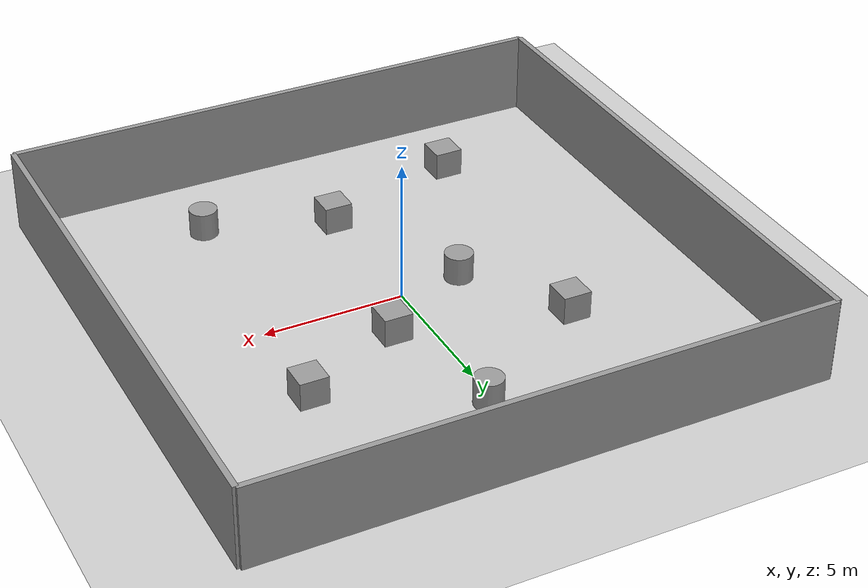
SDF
<sdf version="1.6">
 <world name="default">
  <light name="sun" type="directional">
   <pose>0 0 10 0 -0 0</pose>
   <diffuse>0.8 0.8 0.8 1</diffuse>
   <specular>0.1 0.1 0.1 1</specular>
   <attenuation>
    <range>1000</range>
    <constant>0.9</constant>
    <linear>0.01</linear>
    <quadratic>0.001</quadratic>
   </attenuation>
   <direction>-0.5 0.5 -1</direction>
  </light>
  <model name="ground_plane">
   <static>1</static>
   <link name="link">
    <collision name="collision">
     <geometry><plane><normal>0 0 1</normal><size>100 100</size></plane></geometry>
     <surface><friction><ode><mu>100</mu><mu2>50</mu2></ode></friction></surface>
    </collision>
    <visual name="visual">
     <cast_shadows>0</cast_shadows>
     <geometry><plane><normal>0 0 1</normal><size>100 100</size></plane></geometry>
     <material>
      <script><uri>file://media/materials/scripts/gazebo.material</uri><name>Gazebo/Grey</name></script>
     </material>
    </visual>
   </link>
  </model>
  <gravity>0 0 -9.8</gravity>
  <magnetic_field>6e-06 2.3e-05 -4.2e-05</magnetic_field>
  <atmosphere type="adiabatic"/>
  <physics name="default_physics" default="0" type="ode">
   <max_step_size>0.001</max_step_size>
   <real_time_factor>1</real_time_factor>
   <real_time_update_rate>1000</real_time_update_rate>
  </physics>
  <scene><ambient>0.4 0.4 0.4 1</ambient><background>0.7 0.7 0.7 1</background><shadows>1</shadows></scene>
  <spherical_coordinates>
   <surface_model>EARTH_WGS84</surface_model>
   <latitude_deg>0</latitude_deg>
   <longitude_deg>0</longitude_deg>
   <elevation>0</elevation>
   <heading_deg>0</heading_deg>
  </spherical_coordinates>
  <model name="grey_wall_20m">
   <link name="link">
    <pose>0 0 1.4 0 -0 0</pose>
    <inertial>
     <mass>500</mass>
     <inertia><ixx>1</ixx><ixy>0</ixy><ixz>0</ixz><iyy>1</iyy><iyz>0</iyz><izz>1</izz></inertia>
    </inertial>
    <visual name="visual">
     <cast_shadows>0</cast_shadows>
     <geometry><box><size>20 0.2 3</size></box></geometry>
     <material>
      <script>
       <uri>model://grey_wall/materials/scripts</uri>
       <uri>model://grey_wall/materials/textures</uri>
       <name>vrc/grey_wall</name>
      </script>
      <ambient>1 1 1 1</ambient>
      <diffuse>1 1 1 1</diffuse>
      <specular>0 0 0 1</specular>
      <emissive>0 0 0 1</emissive>
      <shader type="vertex"><normal_map>__default__</normal_map></shader>
     </material>
    </visual>
    <collision name="collision">
     <geometry><box><size>20 0.2 3</size></box></geometry>
     <surface>
      <friction>
       <ode><mu>1</mu><mu2>1</mu2><fdir1>0 0 0</fdir1><slip1>0</slip1><slip2>0</slip2></ode>
       <torsional>
        <coefficient>1</coefficient>
        <patch_radius>0</patch_radius>
        <surface_radius>0</surface_radius>
        <use_patch_radius>1</use_patch_radius>
        <ode><slip>0</slip></ode>
       </torsional>
      </friction>
      <bounce><restitution_coefficient>0</restitution_coefficient><threshold>1e+06</threshold></bounce>
      <contact>
       <collide_without_contact>0</collide_without_contact>
       <collide_without_contact_bitmask>1</collide_without_contact_bitmask>
       <collide_bitmask>1</collide_bitmask>
       <ode>
        <soft_cfm>0</soft_cfm>
        <soft_erp>0.2</soft_erp>
        <kp>1e+13</kp>
        <kd>1</kd>
        <max_vel>0.01</max_vel>
        <min_depth>0</min_depth>
       </ode>
       <bullet>
        <split_impulse>1</split_impulse>
        <split_impulse_penetration_threshold>-0.01</split_impulse_penetration_threshold>
        <soft_cfm>0</soft_cfm>
        <soft_erp>0.2</soft_erp>
        <kp>1e+13</kp>
        <kd>1</kd>
       </bullet>
      </contact>
     </surface>
    </collision>
   </link>
   <static>1</static>
   <pose>-10 0 0 0 -0 1.5708</pose>
  </model>
  <model name="grey_wall_20m_clone">
   <link name="link">
    <pose>0 0 1.4 0 -0 0</pose>
    <inertial>
     <mass>500</mass>
     <inertia><ixx>1</ixx><ixy>0</ixy><ixz>0</ixz><iyy>1</iyy><iyz>0</iyz><izz>1</izz></inertia>
    </inertial>
    <visual name="visual">
     <cast_shadows>0</cast_shadows>
     <geometry><box><size>20 0.2 3</size></box></geometry>
     <material>
      <script>
       <uri>model://grey_wall/materials/scripts</uri>
       <uri>model://grey_wall/materials/textures</uri>
       <name>vrc/grey_wall</name>
      </script>
      <ambient>1 1 1 1</ambient>
      <diffuse>1 1 1 1</diffuse>
      <specular>0 0 0 1</specular>
      <emissive>0 0 0 1</emissive>
      <shader type="vertex"><normal_map>__default__</normal_map></shader>
     </material>
    </visual>
    <collision name="collision">
     <geometry><box><size>20 0.2 3</size></box></geometry>
     <surface>
      <friction>
       <ode><mu>1</mu><mu2>1</mu2><fdir1>0 0 0</fdir1><slip1>0</slip1><slip2>0</slip2></ode>
       <torsional>
        <coefficient>1</coefficient>
        <patch_radius>0</patch_radius>
        <surface_radius>0</surface_radius>
        <use_patch_radius>1</use_patch_radius>
        <ode><slip>0</slip></ode>
       </torsional>
      </friction>
      <bounce><restitution_coefficient>0</restitution_coefficient><threshold>1e+06</threshold></bounce>
      <contact>
       <collide_without_contact>0</collide_without_contact>
       <collide_without_contact_bitmask>1</collide_without_contact_bitmask>
       <collide_bitmask>1</collide_bitmask>
       <ode>
        <soft_cfm>0</soft_cfm>
        <soft_erp>0.2</soft_erp>
        <kp>1e+13</kp>
        <kd>1</kd>
        <max_vel>0.01</max_vel>
        <min_depth>0</min_depth>
       </ode>
       <bullet>
        <split_impulse>1</split_impulse>
        <split_impulse_penetration_threshold>-0.01</split_impulse_penetration_threshold>
        <soft_cfm>0</soft_cfm>
        <soft_erp>0.2</soft_erp>
        <kp>1e+13</kp>
        <kd>1</kd>
       </bullet>
      </contact>
     </surface>
    </collision>
   </link>
   <static>1</static>
   <pose>10 0 0 0 -0 1.5708</pose>
  </model>
  <model name="grey_wall_20m_clone_clone">
   <link name="link">
    <pose>0 0 1.4 0 -0 0</pose>
    <inertial>
     <mass>500</mass>
     <inertia><ixx>1</ixx><ixy>0</ixy><ixz>0</ixz><iyy>1</iyy><iyz>0</iyz><izz>1</izz></inertia>
    </inertial>
    <visual name="visual">
     <cast_shadows>0</cast_shadows>
     <geometry><box><size>20 0.2 3</size></box></geometry>
     <material>
      <script>
       <uri>model://grey_wall/materials/scripts</uri>
       <uri>model://grey_wall/materials/textures</uri>
       <name>vrc/grey_wall</name>
      </script>
      <ambient>1 1 1 1</ambient>
      <diffuse>1 1 1 1</diffuse>
      <specular>0 0 0 1</specular>
      <emissive>0 0 0 1</emissive>
      <shader type="vertex"><normal_map>__default__</normal_map></shader>
     </material>
    </visual>
    <collision name="collision">
     <geometry><box><size>20 0.2 3</size></box></geometry>
     <surface>
      <friction>
       <ode><mu>1</mu><mu2>1</mu2><fdir1>0 0 0</fdir1><slip1>0</slip1><slip2>0</slip2></ode>
       <torsional>
        <coefficient>1</coefficient>
        <patch_radius>0</patch_radius>
        <surface_radius>0</surface_radius>
        <use_patch_radius>1</use_patch_radius>
        <ode><slip>0</slip></ode>
       </torsional>
      </friction>
      <bounce><restitution_coefficient>0</restitution_coefficient><threshold>1e+06</threshold></bounce>
      <contact>
       <collide_without_contact>0</collide_without_contact>
       <collide_without_contact_bitmask>1</collide_without_contact_bitmask>
       <collide_bitmask>1</collide_bitmask>
       <ode>
        <soft_cfm>0</soft_cfm>
        <soft_erp>0.2</soft_erp>
        <kp>1e+13</kp>
        <kd>1</kd>
        <max_vel>0.01</max_vel>
        <min_depth>0</min_depth>
       </ode>
       <bullet>
        <split_impulse>1</split_impulse>
        <split_impulse_penetration_threshold>-0.01</split_impulse_penetration_threshold>
        <soft_cfm>0</soft_cfm>
        <soft_erp>0.2</soft_erp>
        <kp>1e+13</kp>
        <kd>1</kd>
       </bullet>
      </contact>
     </surface>
    </collision>
   </link>
   <static>1</static>
   <pose>0 -10 0 0 -0 0</pose>
  </model>
  <model name="grey_wall_20m_clone_clone_clone">
   <link name="link">
    <pose>0 0 1.4 0 -0 0</pose>
    <inertial>
     <mass>500</mass>
     <inertia><ixx>1</ixx><ixy>0</ixy><ixz>0</ixz><iyy>1</iyy><iyz>0</iyz><izz>1</izz></inertia>
    </inertial>
    <visual name="visual">
     <cast_shadows>0</cast_shadows>
     <geometry><box><size>20 0.2 3</size></box></geometry>
     <material>
      <script>
       <uri>model://grey_wall/materials/scripts</uri>
       <uri>model://grey_wall/materials/textures</uri>
       <name>vrc/grey_wall</name>
      </script>
      <ambient>1 1 1 1</ambient>
      <diffuse>1 1 1 1</diffuse>
      <specular>0 0 0 1</specular>
      <emissive>0 0 0 1</emissive>
      <shader type="vertex"><normal_map>__default__</normal_map></shader>
     </material>
    </visual>
    <collision name="collision">
     <geometry><box><size>20 0.2 3</size></box></geometry>
     <surface>
      <friction>
       <ode><mu>1</mu><mu2>1</mu2><fdir1>0 0 0</fdir1><slip1>0</slip1><slip2>0</slip2></ode>
       <torsional>
        <coefficient>1</coefficient>
        <patch_radius>0</patch_radius>
        <surface_radius>0</surface_radius>
        <use_patch_radius>1</use_patch_radius>
        <ode><slip>0</slip></ode>
       </torsional>
      </friction>
      <bounce><restitution_coefficient>0</restitution_coefficient><threshold>1e+06</threshold></bounce>
      <contact>
       <collide_without_contact>0</collide_without_contact>
       <collide_without_contact_bitmask>1</collide_without_contact_bitmask>
       <collide_bitmask>1</collide_bitmask>
       <ode>
        <soft_cfm>0</soft_cfm>
        <soft_erp>0.2</soft_erp>
        <kp>1e+13</kp>
        <kd>1</kd>
        <max_vel>0.01</max_vel>
        <min_depth>0</min_depth>
       </ode>
       <bullet>
        <split_impulse>1</split_impulse>
        <split_impulse_penetration_threshold>-0.01</split_impulse_penetration_threshold>
        <soft_cfm>0</soft_cfm>
        <soft_erp>0.2</soft_erp>
        <kp>1e+13</kp>
        <kd>1</kd>
       </bullet>
      </contact>
     </surface>
    </collision>
   </link>
   <static>1</static>
   <pose>0 10 0 0 -0 0</pose>
  </model>
  <model name="unit_box_0">
   <pose>-4.49364 3.32741 0.5 0 -0 0</pose>
   <link name="link">
    <inertial>
     <mass>1</mass>
     <inertia>
      <ixx>0.166667</ixx>
      <ixy>0</ixy>
      <ixz>0</ixz>
      <iyy>0.166667</iyy>
      <iyz>0</iyz>
      <izz>0.166667</izz>
     </inertia>
    </inertial>
    <collision name="collision"><geometry><box><size>1 1 1</size></box></geometry></collision>
    <visual name="visual">
     <geometry><box><size>1 1 1</size></box></geometry>
     <material>
      <script><name>Gazebo/Grey</name><uri>file://media/materials/scripts/gazebo.material</uri></script>
     </material>
    </visual>
   </link>
  </model>
  <model name="unit_box_1">
   <pose>0.152495 -5.13755 0.5 0 -0 0</pose>
   <link name="link">
    <inertial>
     <mass>1</mass>
     <inertia>
      <ixx>0.166667</ixx>
      <ixy>0</ixy>
      <ixz>0</ixz>
      <iyy>0.166667</iyy>
      <iyz>0</iyz>
      <izz>0.166667</izz>
     </inertia>
    </inertial>
    <collision name="collision"><geometry><box><size>1 1 1</size></box></geometry></collision>
    <visual name="visual">
     <geometry><box><size>1 1 1</size></box></geometry>
     <material>
      <script><name>Gazebo/Grey</name><uri>file://media/materials/scripts/gazebo.material</uri></script>
     </material>
    </visual>
   </link>
  </model>
  <model name="unit_box_2">
   <pose>5.10151 3.75419 0.5 0 -0 0</pose>
   <link name="link">
    <inertial>
     <mass>1</mass>
     <inertia>
      <ixx>0.166667</ixx>
      <ixy>0</ixy>
      <ixz>0</ixz>
      <iyy>0.166667</iyy>
      <iyz>0</iyz>
      <izz>0.166667</izz>
     </inertia>
    </inertial>
    <collision name="collision"><geometry><box><size>1 1 1</size></box></geometry></collision>
    <visual name="visual">
     <geometry><box><size>1 1 1</size></box></geometry>
     <material>
      <script><name>Gazebo/Grey</name><uri>file://media/materials/scripts/gazebo.material</uri></script>
     </material>
    </visual>
   </link>
  </model>
  <model name="unit_cylinder_0">
   <pose>0.227873 6.43641 0.5 0 -0 0</pose>
   <link name="link">
    <inertial>
     <mass>1</mass>
     <inertia><ixx>0.145833</ixx><ixy>0</ixy><ixz>0</ixz><iyy>0.145833</iyy><iyz>0</iyz><izz>0.125</izz></inertia>
    </inertial>
    <collision name="collision">
     <geometry><cylinder><radius>0.5</radius><length>1</length></cylinder></geometry>
    </collision>
    <visual name="visual">
     <geometry><cylinder><radius>0.5</radius><length>1</length></cylinder></geometry>
     <material>
      <script><name>Gazebo/Grey</name><uri>file://media/materials/scripts/gazebo.material</uri></script>
     </material>
    </visual>
   </link>
  </model>
  <model name="unit_cylinder_2">
   <pose>-2.22835 -0.202149 0.5 0 -0 0</pose>
   <link name="link">
    <inertial>
     <mass>1</mass>
     <inertia><ixx>0.145833</ixx><ixy>0</ixy><ixz>0</ixz><iyy>0.145833</iyy><iyz>0</iyz><izz>0.125</izz></inertia>
    </inertial>
    <collision name="collision">
     <geometry><cylinder><radius>0.5</radius><length>1</length></cylinder></geometry>
    </collision>
    <visual name="visual">
     <geometry><cylinder><radius>0.5</radius><length>1</length></cylinder></geometry>
     <material>
      <script><name>Gazebo/Grey</name><uri>file://media/materials/scripts/gazebo.material</uri></script>
     </material>
    </visual>
   </link>
  </model>
  <model name="unit_box_3">
   <pose>-5.04465 -6.79196 0.5 0 -0 0</pose>
   <link name="link">
    <inertial>
     <mass>1</mass>
     <inertia>
      <ixx>0.166667</ixx>
      <ixy>0</ixy>
      <ixz>0</ixz>
      <iyy>0.166667</iyy>
      <iyz>0</iyz>
      <izz>0.166667</izz>
     </inertia>
    </inertial>
    <collision name="collision"><geometry><box><size>1 1 1</size></box></geometry></collision>
    <visual name="visual">
     <geometry><box><size>1 1 1</size></box></geometry>
     <material>
      <script><name>Gazebo/Grey</name><uri>file://media/materials/scripts/gazebo.material</uri></script>
     </material>
    </visual>
   </link>
  </model>
  <model name="unit_box_4_0">
   <pose>1.28309 1.86359 0.5 0 -0 0</pose>
   <link name="link">
    <inertial>
     <mass>1</mass>
     <inertia>
      <ixx>0.166667</ixx>
      <ixy>0</ixy>
      <ixz>0</ixz>
      <iyy>0.166667</iyy>
      <iyz>0</iyz>
      <izz>0.166667</izz>
     </inertia>
    </inertial>
    <collision name="collision"><geometry><box><size>1 1 1</size></box></geometry></collision>
    <visual name="visual">
     <geometry><box><size>1 1 1</size></box></geometry>
     <material>
      <script><name>Gazebo/Grey</name><uri>file://media/materials/scripts/gazebo.material</uri></script>
     </material>
    </visual>
   </link>
  </model>
  <model name="unit_cylinder_3">
   <pose>4.43453 -6.64653 0.5 0 -0 0</pose>
   <link name="link">
    <inertial>
     <mass>1</mass>
     <inertia><ixx>0.145833</ixx><ixy>0</ixy><ixz>0</ixz><iyy>0.145833</iyy><iyz>0</iyz><izz>0.125</izz></inertia>
    </inertial>
    <collision name="collision">
     <geometry><cylinder><radius>0.5</radius><length>1</length></cylinder></geometry>
    </collision>
    <visual name="visual">
     <geometry><cylinder><radius>0.5</radius><length>1</length></cylinder></geometry>
     <material>
      <script><name>Gazebo/Grey</name><uri>file://media/materials/scripts/gazebo.material</uri></script>
     </material>
    </visual>
   </link>
  </model>
 </world>
</sdf>
